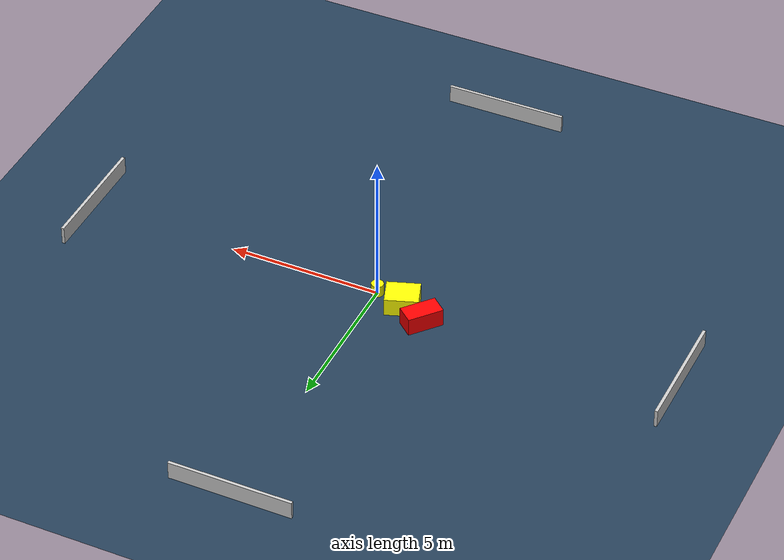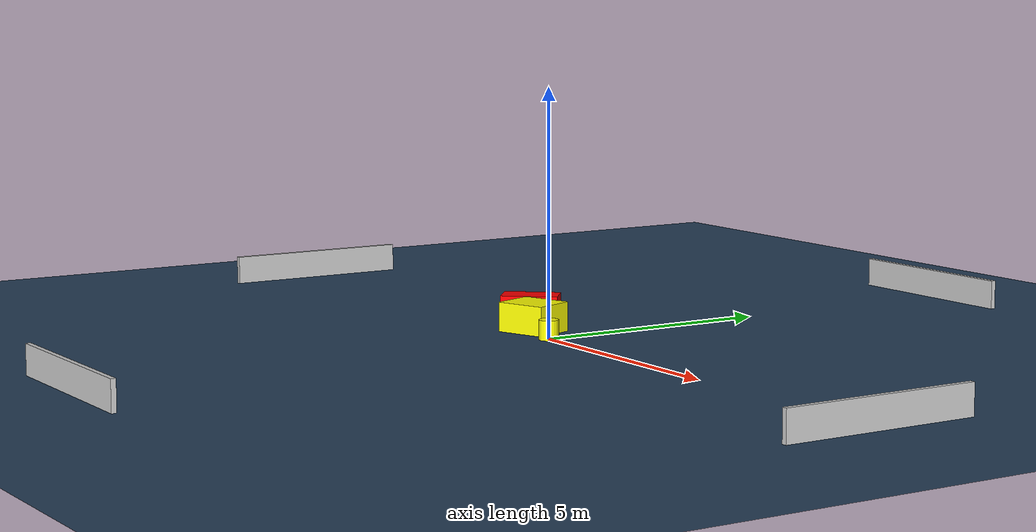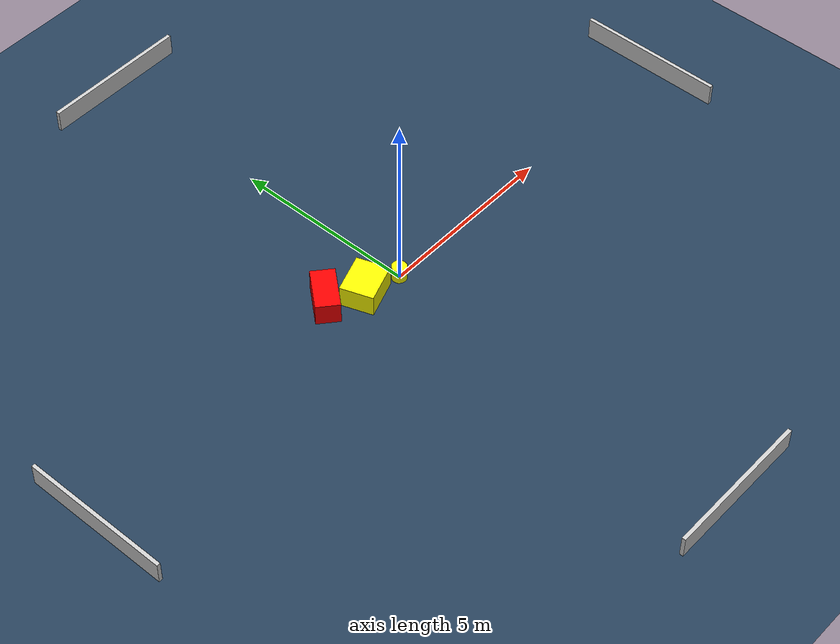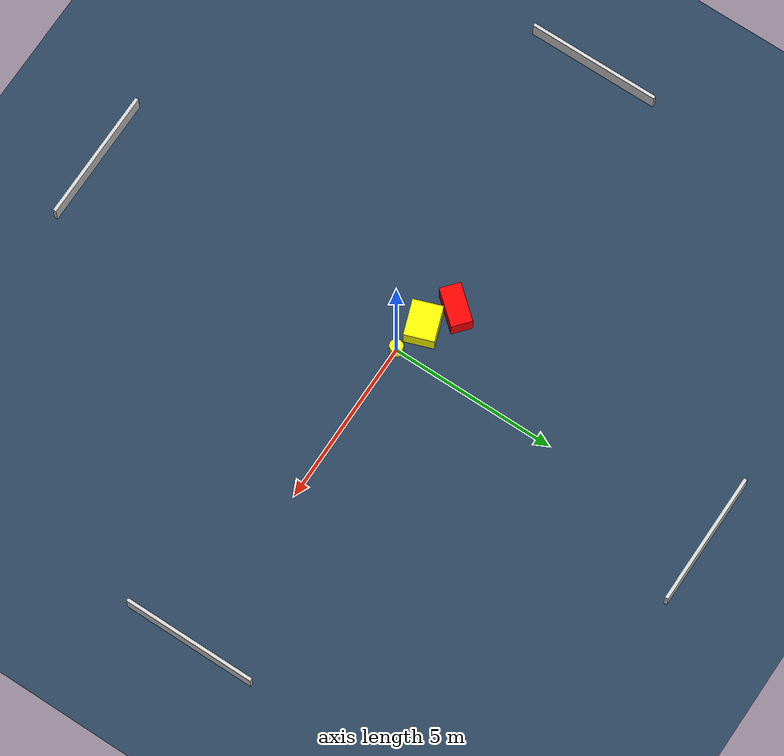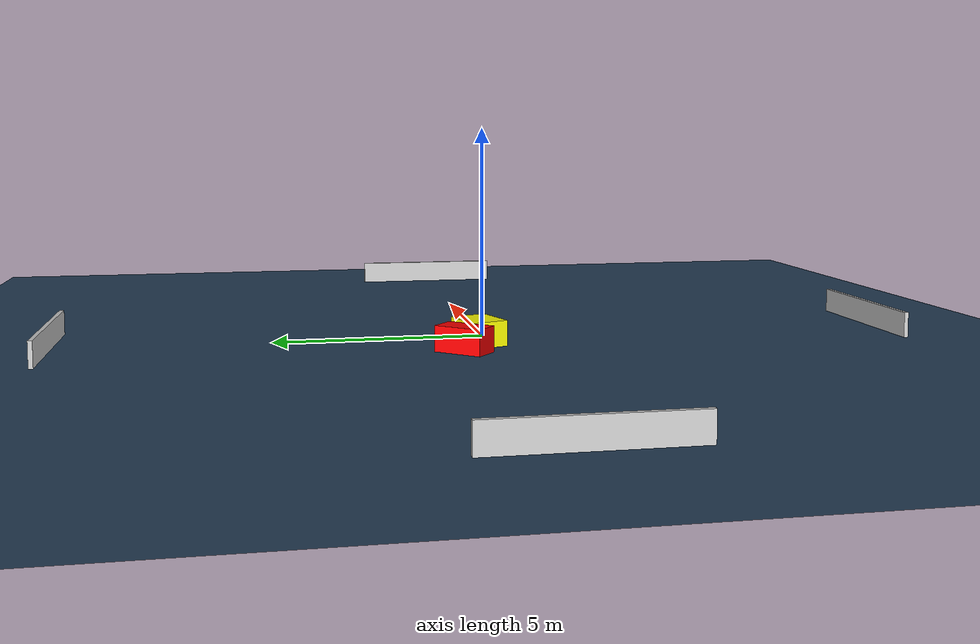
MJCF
<?xml version="1.0" ?>
<mujoco model="generated_environment">
  <option timestep="0.01" integrator="RK4" cone="elliptic"/>
  <default>
    <geom density="1"/>
  </default>
  <asset>
    <texture builtin="gradient" height="3072" name="skybox" rgb1="0.3 0.5 0.7" rgb2="0 0 0" type="skybox" width="512"/>
    <texture builtin="checker" height="300" name="groundplane" rgb1="0.2 0.3 0.4" rgb2="0.1 0.2 0.3" type="2d" width="300"/>
    <material name="groundplane" reflectance="0.2" texrepeat="5 5" texture="groundplane"/>
  </asset>
  <worldbody>
    <light dir="0 0 -1" directional="true" pos="0 0 1.5"/>
    <geom condim="3" friction="0.5 0.005 0.001" material="groundplane" name="floor" pos="0 0 0" size="0 0 0.05" type="plane"/>
    <body name="walls">
      <geom name="wall_1" condim="4" pos="-10.0 0.0 0.3" rgba="0.800000011920929 0.800000011920929 0.800000011920929 1.0" size="0.05 2.0 0.3" type="box"/>
      <geom name="wall_2" condim="4" pos="10.0 0.0 0.3" rgba="0.800000011920929 0.800000011920929 0.800000011920929 1.0" size="0.05 2.0 0.3" type="box"/>
      <geom name="wall_3" condim="4" pos="0.0 -10.0 0.3" rgba="0.800000011920929 0.800000011920929 0.800000011920929 1.0" size="2.0 0.05 0.3" type="box"/>
      <geom name="wall_4" condim="4" pos="0.0 10.0 0.3" rgba="0.800000011920929 0.800000011920929 0.800000011920929 1.0" size="2.0 0.05 0.3" type="box"/>
    </body>
    <body name="robot">
      <joint name="joint_x" type="slide" pos="0 0 0" axis="1 0 0"/>
      <joint name="joint_y" type="slide" pos="0 0 0" axis="0 1 0"/>
      <geom name="robot" type="cylinder" pos="0.0 0.0 0.2" size="0.2 0.2 0.0" mass="5.0" friction="1.0 0.005 0.0001" condim="4" rgba="1.0 1.0 0.0 1.0"/>
    </body>
    <body name="obstacle_1_movable">
      <geom name="obstacle_1_movable" condim="4" pos="-0.9646174781085917 0.2491510942444734 0.3" euler="0 0 19.552981687020665" friction="0.0 0.005 0.001" rgba="1.0 1.0 0.0 1.0" size="0.5372359838023335 0.44403188481004296 0.3" type="box" mass="0.1"/>
      <joint type="free"/>
    </body>
    <body name="obstacle_2_static">
      <geom name="obstacle_2_static" condim="4" pos="-1.8358428883722686 0.7406671967430761 0.3" euler="0 0 49.56372213105902" friction="0.0 0.005 0.001" rgba="1.0 0.0 0.0 1.0" size="0.5885824542135176 0.31455740852073394 0.3" type="box"/>
    </body>
  </worldbody>
  <actuator>
    <motor name="actuator_x" joint="joint_x" gear="1" ctrlrange="-1 1"/>
    <motor name="actuator_y" joint="joint_y" gear="1" ctrlrange="-1 1"/>
  </actuator>
</mujoco>
